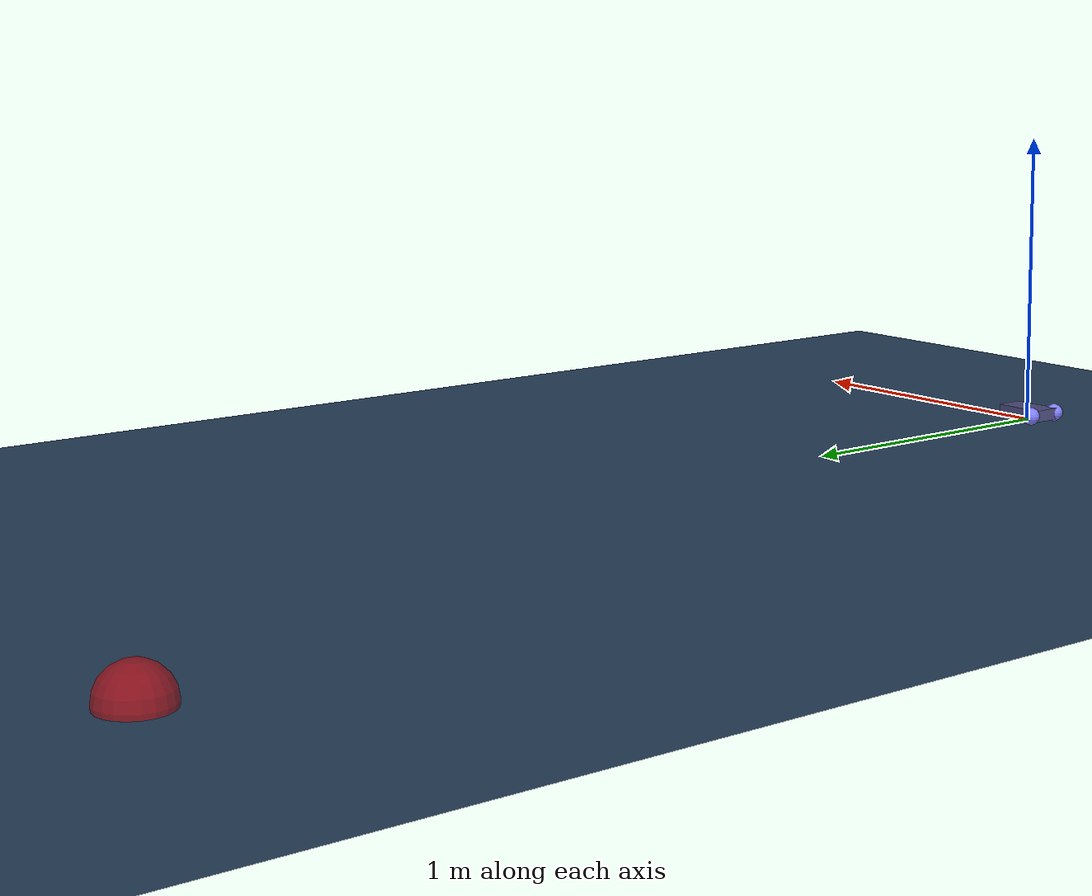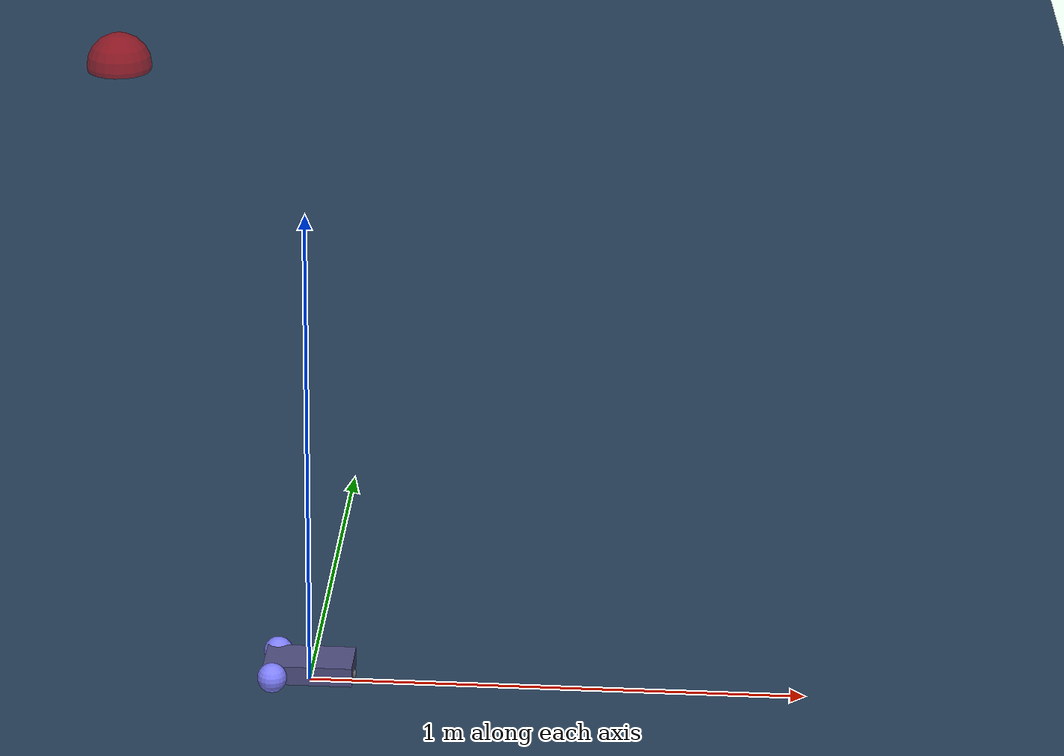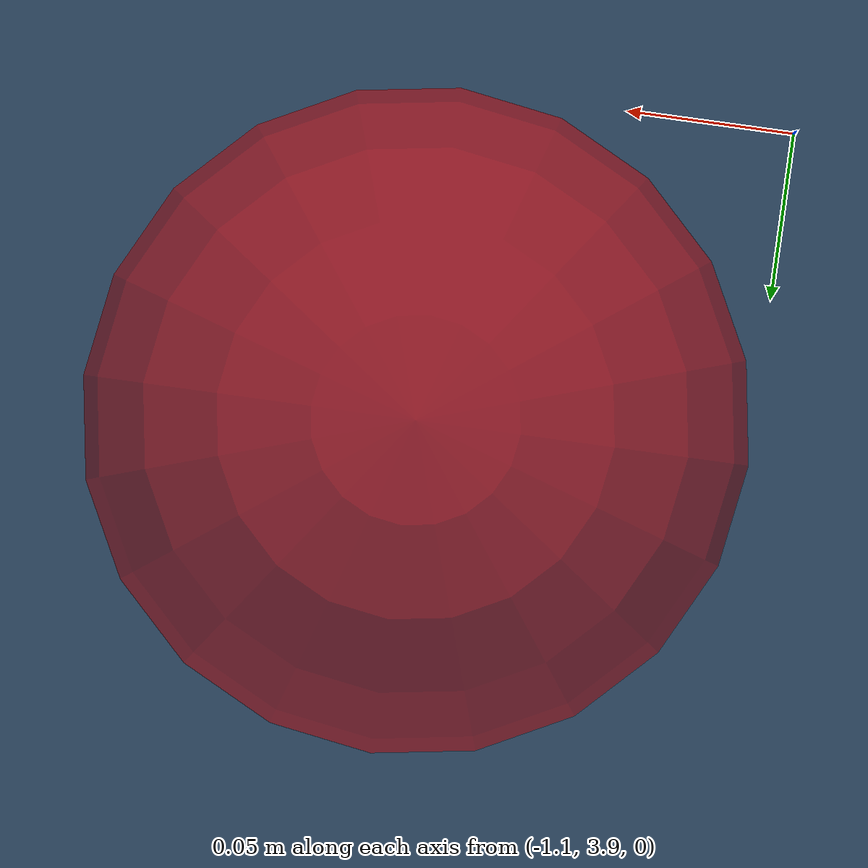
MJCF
<mujoco>
  <compiler autolimits="true"/>

  <asset>
    <texture name="grid" type="2d" builtin="checker" width="512" height="512" rgb1=".1 .2 .3" rgb2=".2 .3 .4"/>
    <material name="grid" texture="grid" texrepeat="1 1" texuniform="true" reflectance=".2"/>
  </asset>

  <default>
    <joint damping=".03" actuatorfrcrange="-0.5 0.5"/>
    <default class="wheel">
      <!-- MJX-compatible: sphere instead of cylinder -->
      <geom type="sphere" size=".03" rgba=".5 .5 1 1"/>
    </default>
  </default>

  <worldbody>
    <geom type="plane" size="5 5 .01" material="grid"/>

    <!-- goal marker - sphere instead of cylinder -->
    <body name="goal" pos="-1 4 0.01">
      <geom type="sphere" size="0.1" rgba="1 0 0 0.5" contype="0" conaffinity="0"/>
    </body>

    <body name="car" pos="0 0 .03">
      <freejoint/>
      <light name="top light" pos="0 0 2" mode="trackcom" diffuse=".4 .4 .4"/>
      <!-- MJX-compatible: box instead of mesh -->
      <geom name="chasis" type="box" size=".09 .05 .02" rgba=".3 .3 .5 1"/>
      <geom name="front wheel" pos=".08 0 -.015" type="sphere" size=".015" condim="1" priority="1"/>
      <light name="front light" pos=".1 0 .02" dir="2 0 -1" diffuse="1 1 1"/>
      <body name="left wheel" pos="-.07 .06 0">
        <joint name="left" axis="0 1 0"/>
        <geom class="wheel"/>
      </body>
      <body name="right wheel" pos="-.07 -.06 0">
        <joint name="right" axis="0 1 0"/>
        <geom class="wheel"/>
      </body>
    </body>
  </worldbody>

  <tendon>
    <fixed name="forward">
      <joint joint="left" coef=".5"/>
      <joint joint="right" coef=".5"/>
    </fixed>
    <fixed name="turn">
      <joint joint="left" coef="-.5"/>
      <joint joint="right" coef=".5"/>
    </fixed>
  </tendon>

  <actuator>
    <motor name="forward" tendon="forward" ctrlrange="-1 1"/>
    <motor name="turn" tendon="turn" ctrlrange="-1 1"/>
  </actuator>

  <sensor>
    <jointactuatorfrc name="right" joint="right"/>
    <jointactuatorfrc name="left" joint="left"/>
  </sensor>
</mujoco>
